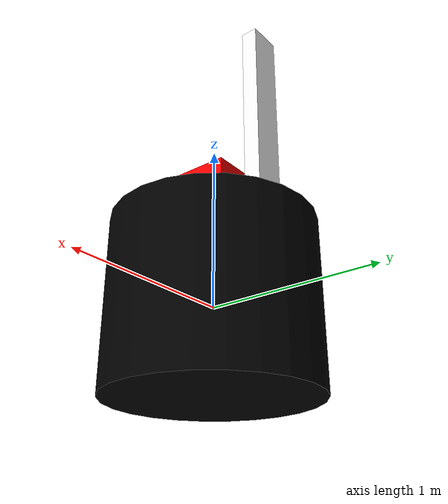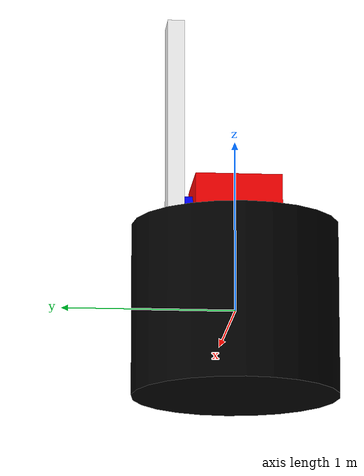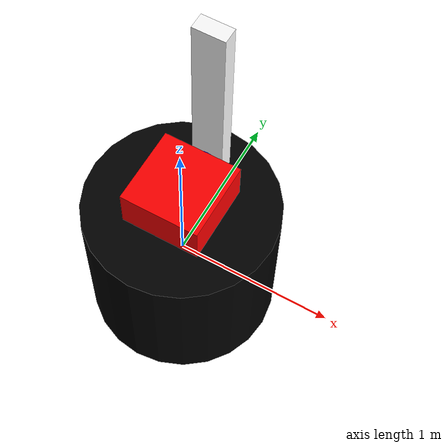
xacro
<!--arm3_trans.xacro :- has inertia, collision properties for links and transmission to control joints of of partial part robot in gazebo-->
<!--transmission trial 1-->
<?xml version="1.0" ?>
<robot name="arm" xmlns:xacro="http://www.ros.org/wiki/xacro">

<material name="blue">
        <color rgba="0 0 1 1"/>
    </material>
    <material name="red">
        <color rgba="1 0 0 1"/>
    </material>
    <material name="green">
        <color rgba="0 1 0 1"/>
    </material>
    <material name="black">
        <color rgba="0 0 0 1"/>
    </material>
    <material name="white">
        <color rgba="1 1 1 1"/>
    </material>

    <link name="base">
    <inertial>
	    <mass value="1"/>
	    <origin rpy="0 0 0" xyz="0 0 0"	/> 	<!--same as origin of link-->
	    <inertia ixx="0.1733" ixy="0" ixz="0" iyy="0.1733" iyz="0" izz="0.18" />
    </inertial>
    <collision>
        <origin rpy="0 0 0" xyz="0 0 0"/>
            <geometry>
                <cylinder radius="0.6" length="1"/>
            </geometry>
            <material name="black"/>
    </collision>
        <visual>
            <origin rpy="0 0 0" xyz="0 0 0"/>
            <geometry>
                <cylinder radius="0.6" length="1"/>
            </geometry>
            <material name="black"/>
        </visual>
    </link>

    <joint name="base__servo1" type="revolute">
        <axis xyz="0 0 1" />
        <origin rpy="0 0 0" xyz="0 0 0.5"/>
        <limit effort="1000" lower="-1.57" upper="1.57" velocity="0.5" />
        <parent link="base"/>
        <child link="servo1"/>
    </joint>
    <transmission name="trans_base_servo1">
      <type>transmission_interface/SimpleTransmission</type>
      <joint name="base_servo1">
        <hardwareInterface>hardware_interface/EffortJointInterface</hardwareInterface>
      </joint>
      <actuator name="motor_base_servo1">
        <hardwareInterface>hardware_interface/EffortJointInterface</hardwareInterface>
        <mechanicalReduction>1</mechanicalReduction>
      </actuator>
    </transmission>

    <link name="servo1">
    <inertial>
	    <mass value="0.250"/>
	    <origin rpy="0 0 0" xyz="0 0 0.1"	/> 	<!--same as origin of link-->
	    <inertia ixx="0.007833" ixy="0" ixz="0" iyy="0.007833" iyz="0" izz="0.01041"/>
    </inertial>
        <collision>
            <origin rpy="0 0 0" xyz="0 0 0.1"/>
            <geometry>
                <box size="0.5 0.5 0.3"/>
            </geometry>
            <material name="red"/>
        </collision>
        <visual>
            <origin rpy="0 0 0" xyz="0 0 0.1"/>
            <geometry>
                <box size="0.5 0.5 0.3"/>
            </geometry>
            <material name="red"/>
        </visual>
    </link>

        <joint name="servo1_shaft1" type="revolute">
        <axis xyz="0 1 0" />
        <limit effort="1000" lower="-1.57" upper="1.57" velocity="0.5" />
        <origin rpy="0 0 0" xyz="0 0.15 0.1"/>
        <parent link="servo1"/>
        <child link="shaft1"/>
    </joint>
    <transmission name="trans_servo1_shaft1">
      <type>transmission_interface/SimpleTransmission</type>
      <joint name="servo1_shaft1">
        <hardwareInterface>hardware_interface/EffortJointInterface</hardwareInterface>
      </joint>
      <actuator name="motor_servo1_shaft1">
        <hardwareInterface>hardware_interface/EffortJointInterface</hardwareInterface>
        <mechanicalReduction>1</mechanicalReduction>
      </actuator>
    </transmission>

    <link name="shaft1">
    <inertial>
	    <mass value="0.050"/>
	    <origin rpy="0 0 0" xyz="0 0 0"	/> 	<!--same as origin of link-->
	    <inertia ixx="0.00041167" ixy="0" ixz="0" iyy="0.0001225" iyz="0" izz="0.00041167"/>
    </inertial>
    <collision>
	<origin rpy="-1.57 0 0" xyz="0 0.1 0"/>
            <geometry>
                <cylinder radius="0.07" length="0.29"/>
            </geometry>
             <material name="blue"/>
    </collision>
        <visual>
            <origin rpy="-1.57 0 0" xyz="0 0.1 0"/>
            <geometry>
                <cylinder radius="0.07" length="0.29"/>
            </geometry>
             <material name="blue"/>
        </visual>
    </link>

    <joint name="shaft1_link1" type="fixed">
        <axis xyz="0 1 0" />
        <origin rpy="0 0 0" xyz="0 0.15 0"/>
        <parent link="shaft1"/>
        <child link="link1"/>
    </joint>
    <transmission name="trans_shaft1_link1">
      <type>transmission_interface/SimpleTransmission</type>
      <joint name="shaft1_link1">
        <hardwareInterface>hardware_interface/EffortJointInterface</hardwareInterface>
      </joint>
      <actuator name="motor_shaft1_link1">
        <hardwareInterface>hardware_interface/EffortJointInterface</hardwareInterface>
        <mechanicalReduction>1</mechanicalReduction>
      </actuator>
    </transmission>

    <link name="link1">
    <inertial>
	    <mass value="0.100"/>
	    <origin rpy="0 0 0" xyz="0 0 0"	/> 	<!--same as origin of link-->
	    <inertia ixx="0.01208" ixy="0" ixz="0" iyy="0.01233" iyz="0" izz="0.00041667"/>
    </inertial>
    <collision>
	<origin rpy="0 0 0" xyz="0 0.05 0.51"/>
            <geometry>
                <box size="0.20 0.1 1.2"/>
            </geometry>
            <material name="white"/>
    </collision>
        <visual>
            <origin rpy="0 0 0" xyz="0 0.05 0.51"/>
            <geometry>
                <box size="0.20 0.1 1.2"/>
            </geometry>
            <material name="white"/>
        </visual>
    </link>

  <!-- gazebo plugin -->
   <gazebo>
    <plugin name="gazebo_ros_control" filename="libgazebo_ros_control.so">
    </plugin>
   </gazebo>

</robot>
